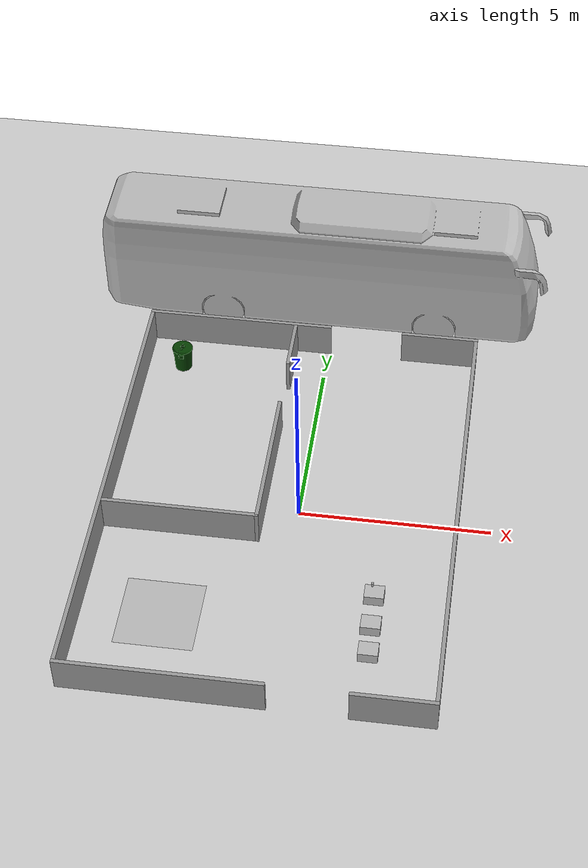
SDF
<sdf version="1.6">
 <world name="default">
  <light name="sun" type="directional">
   <pose>0 0 10 0 -0 0</pose>
   <diffuse>0.8 0.8 0.8 1</diffuse>
   <specular>0.1 0.1 0.1 1</specular>
   <attenuation>
    <range>1000</range>
    <constant>0.9</constant>
    <linear>0.01</linear>
    <quadratic>0.001</quadratic>
   </attenuation>
   <direction>-0.5 0.5 -1</direction>
  </light>
  <model name="ground_plane">
   <static>1</static>
   <link name="link">
    <collision name="collision">
     <geometry><plane><normal>0 0 1</normal><size>100 100</size></plane></geometry>
     <surface><friction><ode><mu>100</mu><mu2>50</mu2></ode></friction></surface>
    </collision>
    <visual name="visual">
     <cast_shadows>0</cast_shadows>
     <geometry><plane><normal>0 0 1</normal><size>100 100</size></plane></geometry>
     <material>
      <script><uri>file://media/materials/scripts/gazebo.material</uri><name>Gazebo/Grey</name></script>
     </material>
    </visual>
   </link>
  </model>
  <gravity>0 0 -9.8</gravity>
  <magnetic_field>6e-06 2.3e-05 -4.2e-05</magnetic_field>
  <atmosphere type="adiabatic"/>
  <physics name="default_physics" default="0" type="ode">
   <max_step_size>0.001</max_step_size>
   <real_time_factor>1</real_time_factor>
   <real_time_update_rate>1000</real_time_update_rate>
  </physics>
  <scene><ambient>0.4 0.4 0.4 1</ambient><background>0.7 0.7 0.7 1</background><shadows>1</shadows></scene>
  <spherical_coordinates>
   <surface_model>EARTH_WGS84</surface_model>
   <latitude_deg>0</latitude_deg>
   <longitude_deg>0</longitude_deg>
   <elevation>0</elevation>
   <heading_deg>0</heading_deg>
  </spherical_coordinates>
  <model name="RoboCup_Home">
   <pose>0.0595 -0.023998 0 0 -0 0</pose>
   <link name="Wall_1">
    <collision name="Wall_1_Collision">
     <geometry><box><size>12 0.1 1</size></box></geometry>
     <pose>0 0 0.5 0 -0 0</pose>
    </collision>
    <visual name="Wall_1_Visual">
     <pose>0 0 0.5 0 -0 0</pose>
     <geometry><box><size>12 0.1 1</size></box></geometry>
     <material>
      <script><uri>file://media/materials/scripts/gazebo.material</uri><name>Gazebo/Grey</name></script>
      <ambient>1 1 1 1</ambient>
     </material>
    </visual>
    <pose>4.0505 0 0 0 -0 1.5708</pose>
   </link>
   <link name="Wall_2">
    <collision name="Wall_2_Collision">
     <geometry><box><size>12 0.1 1</size></box></geometry>
     <pose>0 0 0.5 0 -0 0</pose>
    </collision>
    <visual name="Wall_2_Visual">
     <pose>0 0 0.5 0 -0 0</pose>
     <geometry><box><size>12 0.1 1</size></box></geometry>
     <material>
      <script><uri>file://media/materials/scripts/gazebo.material</uri><name>Gazebo/Grey</name></script>
      <ambient>1 1 1 1</ambient>
     </material>
    </visual>
    <pose>-5.0505 0 0 0 -0 1.5708</pose>
   </link>
   <link name="Wall_3">
    <collision name="Wall_3_Collision">
     <geometry><box><size>5.11 0.1 1</size></box></geometry>
     <pose>0 0 0.5 0 -0 0</pose>
    </collision>
    <visual name="Wall_3_Visual">
     <pose>0 0 0.5 0 -0 0</pose>
     <geometry><box><size>5.11 0.1 1</size></box></geometry>
     <material>
      <script><uri>file://media/materials/scripts/gazebo.material</uri><name>Gazebo/Grey</name></script>
      <ambient>1 1 1 1</ambient>
     </material>
    </visual>
    <pose>-2.545 6.05 0 0 -0 0</pose>
   </link>
   <link name="Wall_4">
    <collision name="Wall_4_Collision">
     <geometry><box><size>2.11 0.1 1</size></box></geometry>
     <pose>0 0 0.5 0 -0 0</pose>
    </collision>
    <visual name="Wall_4_Visual">
     <pose>0 0 0.5 0 -0 0</pose>
     <geometry><box><size>2.11 0.1 1</size></box></geometry>
     <material>
      <script><uri>file://media/materials/scripts/gazebo.material</uri><name>Gazebo/Grey</name></script>
      <ambient>1 1 1 1</ambient>
     </material>
    </visual>
    <pose>3.045 6.05 0 0 -0 0</pose>
   </link>
   <link name="Wall_5">
    <collision name="Wall_5_Collision">
     <geometry><box><size>5.11 0.1 1</size></box></geometry>
     <pose>0 0 0.5 0 -0 0</pose>
    </collision>
    <visual name="Wall_5_Visual">
     <pose>0 0 0.5 0 -0 0</pose>
     <geometry><box><size>5.11 0.1 1</size></box></geometry>
     <material>
      <script><uri>file://media/materials/scripts/gazebo.material</uri><name>Gazebo/Grey</name></script>
      <ambient>1 1 1 1</ambient>
     </material>
    </visual>
    <pose>-2.545 -6.05 0 0 -0 0</pose>
   </link>
   <link name="Wall_6">
    <collision name="Wall_6_Collision">
     <geometry><box><size>2.11 0.1 1</size></box></geometry>
     <pose>0 0 0.5 0 -0 0</pose>
    </collision>
    <visual name="Wall_6_Visual">
     <pose>0 0 0.5 0 -0 0</pose>
     <geometry><box><size>2.11 0.1 1</size></box></geometry>
     <material>
      <script><uri>file://media/materials/scripts/gazebo.material</uri><name>Gazebo/Grey</name></script>
      <ambient>1 1 1 1</ambient>
     </material>
    </visual>
    <pose>3.045 -6.05 0 0 -0 0</pose>
   </link>
   <link name="Wall_7">
    <collision name="Wall_7_Collision">
     <geometry><box><size>4.0553 0.1 1</size></box></geometry>
     <pose>0 0 0.5 0 -0 0</pose>
    </collision>
    <visual name="Wall_7_Visual">
     <pose>0 0 0.5 0 -0 0</pose>
     <geometry><box><size>4.0553 0.1 1</size></box></geometry>
     <material>
      <script><uri>file://media/materials/scripts/gazebo.material</uri><name>Gazebo/Grey</name></script>
      <ambient>1 1 1 1</ambient>
     </material>
    </visual>
    <pose>-0.9895 0.9875 0 0 0 -1.5708</pose>
   </link>
   <link name="Wall_8">
    <collision name="Wall_8_Collision">
     <geometry><box><size>1.5553 0.1 1</size></box></geometry>
     <pose>0 0 0.5 0 -0 0</pose>
    </collision>
    <visual name="Wall_8_Visual">
     <pose>0 0 0.5 0 -0 0</pose>
     <geometry><box><size>1.5553 0.1 1</size></box></geometry>
     <material>
      <script><uri>file://media/materials/scripts/gazebo.material</uri><name>Gazebo/Grey</name></script>
      <ambient>1 1 1 1</ambient>
     </material>
    </visual>
    <pose>-0.9895 5.2375 0 0 0 -1.5708</pose>
   </link>
   <link name="Wall_9">
    <collision name="Wall_9_Collision">
     <geometry><box><size>4.05 0.1 1</size></box></geometry>
     <pose>0 0 0.5 0 -0 0</pose>
    </collision>
    <visual name="Wall_9_Visual">
     <pose>0 0 0.5 0 -0 0</pose>
     <geometry><box><size>4.05 0.1 1</size></box></geometry>
     <material>
      <script><uri>file://media/materials/scripts/gazebo.material</uri><name>Gazebo/Grey</name></script>
      <ambient>1 1 1 1</ambient>
     </material>
    </visual>
    <pose>-2.9875 -0.9875 0 0 0 0</pose>
   </link>
   <static>1</static>
  </model>
  <model name="first_2015_trash_can">
   <link name="link">
    <inertial>
     <pose>0 0 0.3683 0 -0 0</pose>
     <mass>4.83076</mass>
     <inertia>
      <ixx>0.281534</ixx>
      <ixy>0</ixy>
      <ixz>0</ixz>
      <iyy>0.281534</iyy>
      <iyz>0</iyz>
      <izz>0.126223</izz>
     </inertia>
    </inertial>
    <visual name="visual">
     <geometry><mesh><uri>model://first_2015_trash_can/meshes/trash_can.dae</uri></mesh></geometry>
    </visual>
    <collision name="collision">
     <geometry><mesh><uri>model://first_2015_trash_can/meshes/trash_can.dae</uri></mesh></geometry>
    </collision>
   </link>
   <pose>-3.97061 4.96063 -3e-06 1e-06 1.1e-05 -7.5e-05</pose>
  </model>
  <model name="bus">
   <static>1</static>
   <link name="link">
    <collision name="collision">
     <geometry><mesh><scale>0.01 0.01 0.01</scale><uri>model://bus/meshes/bus.obj</uri></mesh></geometry>
    </collision>
    <visual name="visual">
     <geometry><mesh><scale>0.01 0.01 0.01</scale><uri>model://bus/meshes/bus.obj</uri></mesh></geometry>
    </visual>
   </link>
   <pose>-0.36092 8.00225 0 0 -0 1.57</pose>
  </model>
  <model name="checkerboard_plane">
   <static>1</static>
   <link name="link">
    <visual name="visual">
     <geometry><mesh><uri>model://checkerboard_plane/meshes/checkerboard_plane.dae</uri></mesh></geometry>
    </visual>
   </link>
   <pose>-2.95854 -3.66101 0 0 -0 0</pose>
  </model>
  <model name="cardboard_box">
   <pose>2.30132 -4.24469 0.149 0 -0 0</pose>
   <link name="link">
    <inertial>
     <mass>2</mass>
     <inertia>
      <ixx>0.0416667</ixx>
      <ixy>0</ixy>
      <ixz>0</ixz>
      <iyy>0.0566667</iyy>
      <iyz>0</iyz>
      <izz>0.0683333</izz>
     </inertia>
    </inertial>
    <collision name="collision">
     <geometry><box><size>0.5 0.4 0.3</size></box></geometry>
     <surface>
      <friction><ode><mu>1</mu><mu2>1</mu2></ode></friction>
      <contact><ode><kp>1e+07</kp><kd>1</kd><min_depth>0.001</min_depth><max_vel>0.1</max_vel></ode></contact>
     </surface>
    </collision>
    <visual name="visual">
     <pose>0 0 -0.15 0 -0 0</pose>
     <geometry>
      <mesh><uri>model://cardboard_box/meshes/cardboard_box.dae</uri><scale>1.25932 1.00745 0.755591</scale></mesh>
     </geometry>
    </visual>
   </link>
  </model>
  <model name="cardboard_box_0">
   <pose>2.2522 -2.50497 0.149 0 -0 0</pose>
   <link name="link">
    <inertial>
     <mass>2</mass>
     <inertia>
      <ixx>0.0416667</ixx>
      <ixy>0</ixy>
      <ixz>0</ixz>
      <iyy>0.0566667</iyy>
      <iyz>0</iyz>
      <izz>0.0683333</izz>
     </inertia>
    </inertial>
    <collision name="collision">
     <geometry><box><size>0.5 0.4 0.3</size></box></geometry>
     <surface>
      <friction><ode><mu>1</mu><mu2>1</mu2></ode></friction>
      <contact><ode><kp>1e+07</kp><kd>1</kd><min_depth>0.001</min_depth><max_vel>0.1</max_vel></ode></contact>
     </surface>
    </collision>
    <visual name="visual">
     <pose>0 0 -0.15 0 -0 0</pose>
     <geometry>
      <mesh><uri>model://cardboard_box/meshes/cardboard_box.dae</uri><scale>1.25932 1.00745 0.755591</scale></mesh>
     </geometry>
    </visual>
   </link>
  </model>
  <model name="cardboard_box_1">
   <pose>2.2712 -3.4397 0.149 0 -0 0</pose>
   <link name="link">
    <inertial>
     <mass>2</mass>
     <inertia>
      <ixx>0.0416667</ixx>
      <ixy>0</ixy>
      <ixz>0</ixz>
      <iyy>0.0566667</iyy>
      <iyz>0</iyz>
      <izz>0.0683333</izz>
     </inertia>
    </inertial>
    <collision name="collision">
     <geometry><box><size>0.5 0.4 0.3</size></box></geometry>
     <surface>
      <friction><ode><mu>1</mu><mu2>1</mu2></ode></friction>
      <contact><ode><kp>1e+07</kp><kd>1</kd><min_depth>0.001</min_depth><max_vel>0.1</max_vel></ode></contact>
     </surface>
    </collision>
    <visual name="visual">
     <pose>0 0 -0.15 0 -0 0</pose>
     <geometry>
      <mesh><uri>model://cardboard_box/meshes/cardboard_box.dae</uri><scale>1.25932 1.00745 0.755591</scale></mesh>
     </geometry>
    </visual>
   </link>
  </model>
  <model name="coke_can">
   <link name="link">
    <inertial>
     <pose>0 0 0.06 0 -0 0</pose>
     <mass>0.39</mass>
     <inertia>
      <ixx>0.00055575</ixx>
      <ixy>0</ixy>
      <ixz>0</ixz>
      <iyy>0.00055575</iyy>
      <iyz>0</iyz>
      <izz>0.0001755</izz>
     </inertia>
    </inertial>
    <collision name="collision">
     <pose>0.003937 0.004724 -0.18 0 -0 0</pose>
     <geometry><mesh><uri>model://coke_can/meshes/coke_can.dae</uri></mesh></geometry>
     <surface>
      <friction><ode><mu>1</mu><mu2>1</mu2></ode></friction>
      <contact><ode><kp>1e+07</kp><kd>1</kd><min_depth>0.001</min_depth><max_vel>0.1</max_vel></ode></contact>
     </surface>
    </collision>
    <visual name="visual">
     <pose>0.003937 0.004724 -0.18 0 -0 0</pose>
     <geometry><mesh><uri>model://coke_can/meshes/coke_can.dae</uri></mesh></geometry>
    </visual>
   </link>
   <pose>2.2 -2.5 0.5 0 -0 0</pose>
  </model>
 </world>
</sdf>
